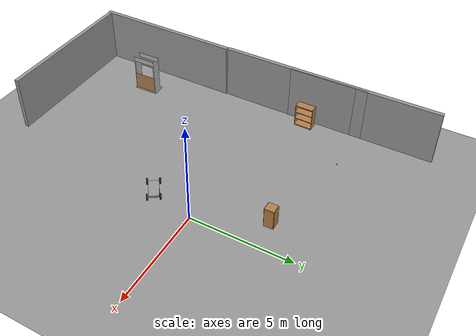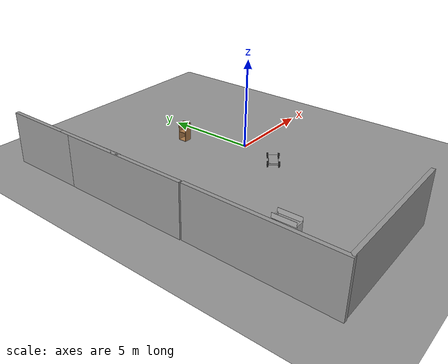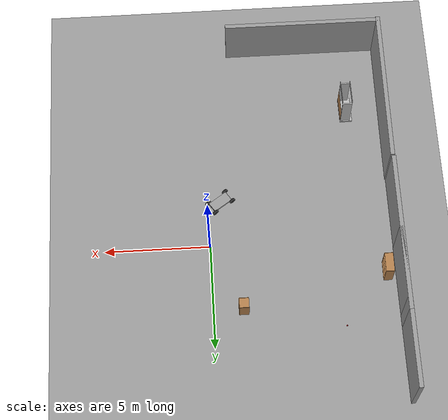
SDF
<sdf version="1.7">
 <world name="default">
  <model name="ground_plane_0">
   <static>1</static>
   <link name="link">
    <collision name="collision">
     <geometry><plane><normal>0 0 1</normal><size>100 100</size></plane></geometry>
     <surface><friction><ode><mu>100</mu><mu2>50</mu2></ode></friction></surface>
    </collision>
    <visual name="visual">
     <cast_shadows>0</cast_shadows>
     <geometry><plane><normal>0 0 1</normal><size>100 100</size></plane></geometry>
     <material>
      <script><uri>file://media/materials/scripts/gazebo.material</uri><name>Gazebo/Grey</name></script>
     </material>
    </visual>
    <velocity_decay><linear>0</linear><angular>0</angular></velocity_decay>
   </link>
   <pose>0.497681 0 0 0 -0 0</pose>
  </model>
  <model name="cart_rigid_suspension">
   <link name="chassis">
    <pose>0 0 0.15 0 -0 0</pose>
    <inertial>
     <pose>0.1 0 0 0 -0 0</pose>
     <mass>10</mass>
     <inertia>
      <ixx>0.216667</ixx>
      <iyy>0.841667</iyy>
      <izz>1.04167</izz>
      <ixy>0</ixy>
      <ixz>0</ixz>
      <iyz>0</iyz>
     </inertia>
    </inertial>
    <collision name="collision"><geometry><box><size>1 0.5 0.1</size></box></geometry></collision>
    <visual name="visual">
     <geometry><box><size>1 0.5 0.1</size></box></geometry>
     <material>
      <script><uri>file://media/materials/scripts/gazebo.material</uri><name>Gazebo/Grey</name></script>
     </material>
    </visual>
    <velocity_decay><linear>0</linear><angular>0</angular></velocity_decay>
   </link>
   <link name="wheel_front_left">
    <pose>0.5 0.298 0.15 -1.5708 0 0</pose>
    <inertial>
     <mass>0.5</mass>
     <inertia>
      <ixx>0.00307917</ixx>
      <iyy>0.00307917</iyy>
      <izz>0.005625</izz>
      <ixy>0</ixy>
      <ixz>0</ixz>
      <iyz>0</iyz>
     </inertia>
    </inertial>
    <collision name="collision">
     <geometry><cylinder><radius>0.15</radius><length>0.08</length></cylinder></geometry>
    </collision>
    <visual name="visual">
     <geometry><cylinder><radius>0.15</radius><length>0.08</length></cylinder></geometry>
     <material>
      <script><uri>file://media/materials/scripts/gazebo.material</uri><name>Gazebo/Black</name></script>
     </material>
    </visual>
    <velocity_decay><linear>0</linear><angular>0</angular></velocity_decay>
   </link>
   <joint name="wheel_front_left_spin" type="revolute">
    <parent>chassis</parent>
    <child>wheel_front_left</child>
    <axis>
     <xyz expressed_in="__model__">0 0 1</xyz>
     <limit><lower>-1e+16</lower><upper>1e+16</upper></limit>
     <dynamics><spring_reference>0</spring_reference><spring_stiffness>0</spring_stiffness></dynamics>
    </axis>
   </joint>
   <link name="wheel_front_right">
    <pose>0.5 -0.298 0.15 -1.5708 0 0</pose>
    <inertial>
     <mass>0.5</mass>
     <inertia>
      <ixx>0.00307917</ixx>
      <iyy>0.00307917</iyy>
      <izz>0.005625</izz>
      <ixy>0</ixy>
      <ixz>0</ixz>
      <iyz>0</iyz>
     </inertia>
    </inertial>
    <collision name="collision">
     <geometry><cylinder><radius>0.15</radius><length>0.08</length></cylinder></geometry>
    </collision>
    <visual name="visual">
     <geometry><cylinder><radius>0.15</radius><length>0.08</length></cylinder></geometry>
     <material>
      <script><uri>file://media/materials/scripts/gazebo.material</uri><name>Gazebo/Black</name></script>
     </material>
    </visual>
    <velocity_decay><linear>0</linear><angular>0</angular></velocity_decay>
   </link>
   <joint name="wheel_front_right_spin" type="revolute">
    <parent>chassis</parent>
    <child>wheel_front_right</child>
    <axis>
     <xyz expressed_in="__model__">0 0 1</xyz>
     <limit><lower>-1e+16</lower><upper>1e+16</upper></limit>
     <dynamics><spring_reference>0</spring_reference><spring_stiffness>0</spring_stiffness></dynamics>
    </axis>
   </joint>
   <link name="wheel_rear_left">
    <pose>-0.5 0.298 0.15 -1.5708 0 0</pose>
    <inertial>
     <mass>0.5</mass>
     <inertia>
      <ixx>0.00307917</ixx>
      <iyy>0.00307917</iyy>
      <izz>0.005625</izz>
      <ixy>0</ixy>
      <ixz>0</ixz>
      <iyz>0</iyz>
     </inertia>
    </inertial>
    <collision name="collision">
     <geometry><cylinder><radius>0.15</radius><length>0.08</length></cylinder></geometry>
    </collision>
    <visual name="visual">
     <geometry><cylinder><radius>0.15</radius><length>0.08</length></cylinder></geometry>
     <material>
      <script><uri>file://media/materials/scripts/gazebo.material</uri><name>Gazebo/Black</name></script>
     </material>
    </visual>
    <velocity_decay><linear>0</linear><angular>0</angular></velocity_decay>
   </link>
   <joint name="wheel_rear_left_spin" type="revolute">
    <parent>chassis</parent>
    <child>wheel_rear_left</child>
    <axis>
     <xyz expressed_in="__model__">0 0 1</xyz>
     <limit><lower>-1e+16</lower><upper>1e+16</upper></limit>
     <dynamics><spring_reference>0</spring_reference><spring_stiffness>0</spring_stiffness></dynamics>
    </axis>
   </joint>
   <link name="wheel_rear_right">
    <pose>-0.5 -0.298 0.15 -1.5708 0 0</pose>
    <inertial>
     <mass>0.5</mass>
     <inertia>
      <ixx>0.00307917</ixx>
      <iyy>0.00307917</iyy>
      <izz>0.005625</izz>
      <ixy>0</ixy>
      <ixz>0</ixz>
      <iyz>0</iyz>
     </inertia>
    </inertial>
    <collision name="collision">
     <geometry><cylinder><radius>0.15</radius><length>0.08</length></cylinder></geometry>
    </collision>
    <visual name="visual">
     <geometry><cylinder><radius>0.15</radius><length>0.08</length></cylinder></geometry>
     <material>
      <script><uri>file://media/materials/scripts/gazebo.material</uri><name>Gazebo/Black</name></script>
     </material>
    </visual>
    <velocity_decay><linear>0</linear><angular>0</angular></velocity_decay>
   </link>
   <joint name="wheel_rear_right_spin" type="revolute">
    <parent>chassis</parent>
    <child>wheel_rear_right</child>
    <axis>
     <xyz expressed_in="__model__">0 0 1</xyz>
     <limit><lower>-1e+16</lower><upper>1e+16</upper></limit>
     <dynamics><spring_reference>0</spring_reference><spring_stiffness>0</spring_stiffness></dynamics>
    </axis>
   </joint>
   <pose>-0.593452 -2.24485 2.6e-05 6.8e-05 2.2e-05 -2.54171</pose>
   <static>0</static>
  </model>
  <model name="frc2016_drawbridge">
   <link name="base">
    <inertial>
     <mass>10</mass>
     <pose>0 0 1 0 -0 0</pose>
     <inertia><ixx>3.64907</ixx><ixy>0</ixy><ixz>0</ixz><iyy>4.67075</iyy><iyz>0</iyz><izz>1.66649</izz></inertia>
    </inertial>
    <visual name="platform">
     <pose>0 0 0.0425 0 -0 0</pose>
     <geometry><box><size>1.27 0.5969 0.085</size></box></geometry>
    </visual>
    <collision name="platform">
     <pose>0 0 0.0425 0 -0 0</pose>
     <geometry><box><size>1.27 0.5969 0.085</size></box></geometry>
    </collision>
    <visual name="right_wall">
     <pose>0.55879 0.04444 0.889 0 -0 0</pose>
     <geometry><box><size>0.05715 0.45698 1.77165</size></box></geometry>
    </visual>
    <collision name="right_wall">
     <pose>0.55879 0.04444 0.889 0 -0 0</pose>
     <geometry><box><size>0.05715 0.45698 1.77165</size></box></geometry>
    </collision>
    <visual name="left_wall">
     <pose>-0.55879 0.04444 0.889 0 -0 0</pose>
     <geometry><box><size>0.05715 0.45698 1.77165</size></box></geometry>
    </visual>
    <collision name="left_wall">
     <pose>-0.55879 0.04444 0.889 0 -0 0</pose>
     <geometry><box><size>0.05715 0.45698 1.77165</size></box></geometry>
    </collision>
    <visual name="front_upper_wall">
     <pose>0 0.27611 1.84286 0 -0 0</pose>
     <geometry><box><size>1.1557 0.006347 0.254</size></box></geometry>
    </visual>
    <collision name="front_upper_wall">
     <pose>0 0.27611 1.84286 0 -0 0</pose>
     <geometry><box><size>1.1557 0.006347 0.254</size></box></geometry>
    </collision>
    <visual name="back_upper_wall">
     <pose>0 -0.18722 1.84286 0 -0 0</pose>
     <geometry><box><size>1.1557 0.006347 0.254</size></box></geometry>
    </visual>
    <collision name="back_upper_wall">
     <pose>0 -0.18722 1.84286 0 -0 0</pose>
     <geometry><box><size>1.1557 0.006347 0.254</size></box></geometry>
    </collision>
    <velocity_decay><linear>0</linear><angular>0</angular></velocity_decay>
   </link>
   <link name="bridge">
    <pose>0 0.28245 0.50577 0 -0 0</pose>
    <inertial>
     <mass>2</mass>
     <pose>0 -0.28245 -0.50577 0 -0 0</pose>
     <inertia>
      <ixx>0.139361</ixx>
      <ixy>0</ixy>
      <ixz>0</ixz>
      <iyy>0.357088</iyy>
      <iyz>0</iyz>
      <izz>0.217741</izz>
     </inertia>
    </inertial>
    <visual name="visual">
     <geometry><box><size>1.14298 0.006347 0.9144</size></box></geometry>
     <material><script><name>Gazebo/WoodFloor</name><uri>__default__</uri></script></material>
    </visual>
    <collision name="collision"><geometry><box><size>1.14298 0.006347 0.9144</size></box></geometry></collision>
    <velocity_decay><linear>0</linear><angular>0</angular></velocity_decay>
   </link>
   <joint name="bridge_joint" type="revolute">
    <pose>0 0 -0.4172 0 -0 0</pose>
    <parent>base</parent>
    <child>bridge</child>
    <axis>
     <xyz expressed_in="__model__">1 0 0</xyz>
     <limit><lower>-2</lower><upper>0</upper></limit>
     <dynamics><spring_reference>0</spring_reference><spring_stiffness>0</spring_stiffness></dynamics>
    </axis>
   </joint>
   <pose>-7.03164 -6.93119 -0.000301 0.000171 0.000393 -1.5554</pose>
   <static>0</static>
  </model>
  <model name="RoboCup SPL Ball_0">
   <static>0</static>
   <link name="ball">
    <inertial>
     <mass>0.0056</mass>
     <inertia>
      <ixx>2.37e-06</ixx>
      <iyy>2.37e-06</iyy>
      <izz>2.37e-06</izz>
      <ixy>0</ixy>
      <ixz>0</ixz>
      <iyz>0</iyz>
     </inertia>
    </inertial>
    <collision name="collision"><geometry><sphere><radius>0.0325</radius></sphere></geometry></collision>
    <visual name="visual">
     <geometry><sphere><radius>0.0325</radius></sphere></geometry>
     <material>
      <script><uri>file://media/materials/scripts/gazebo.material</uri><name>Gazebo/RedBright</name></script>
     </material>
    </visual>
    <velocity_decay><linear>0</linear><angular>0</angular></velocity_decay>
   </link>
   <pose>-6.12244 4.31862 0.226195 0.155685 -1.25458 1.90313</pose>
  </model>
  <model name="grey_wall_0">
   <static>1</static>
   <link name="link">
    <pose>0 0 1.4 0 -0 0</pose>
    <collision name="collision"><geometry><box><size>7.5 0.2 2.8</size></box></geometry></collision>
    <visual name="visual">
     <cast_shadows>0</cast_shadows>
     <geometry><box><size>7.5 0.2 2.8</size></box></geometry>
     <material>
      <script>
       <uri>model://grey_wall/materials/scripts</uri>
       <uri>model://grey_wall/materials/textures</uri>
       <name>vrc/grey_wall</name>
      </script>
     </material>
    </visual>
    <velocity_decay><linear>0</linear><angular>0</angular></velocity_decay>
   </link>
   <pose>-8.76574 0.752835 0 0 0 -1.57097</pose>
  </model>
  <model name="grey_wall_2">
   <static>1</static>
   <link name="link">
    <pose>0 0 1.4 0 -0 0</pose>
    <collision name="collision"><geometry><box><size>7.5 0.2 2.8</size></box></geometry></collision>
    <visual name="visual">
     <cast_shadows>0</cast_shadows>
     <geometry><box><size>7.5 0.2 2.8</size></box></geometry>
     <material>
      <script>
       <uri>model://grey_wall/materials/scripts</uri>
       <uri>model://grey_wall/materials/textures</uri>
       <name>vrc/grey_wall</name>
      </script>
     </material>
    </visual>
    <velocity_decay><linear>0</linear><angular>0</angular></velocity_decay>
   </link>
   <pose>-8.76656 4.31578 0 0 0 -1.56736</pose>
  </model>
  <model name="grey_wall_4">
   <static>1</static>
   <link name="link">
    <pose>0 0 1.4 0 -0 0</pose>
    <collision name="collision"><geometry><box><size>7.5 0.2 2.8</size></box></geometry></collision>
    <visual name="visual">
     <cast_shadows>0</cast_shadows>
     <geometry><box><size>7.5 0.2 2.8</size></box></geometry>
     <material>
      <script>
       <uri>model://grey_wall/materials/scripts</uri>
       <uri>model://grey_wall/materials/textures</uri>
       <name>vrc/grey_wall</name>
      </script>
     </material>
    </visual>
    <velocity_decay><linear>0</linear><angular>0</angular></velocity_decay>
   </link>
   <pose>-5.02716 -10.4179 0 0 -0 0</pose>
  </model>
  <model name="bookshelf_2">
   <static>1</static>
   <link name="link">
    <inertial><mass>1</mass></inertial>
    <collision name="back">
     <pose>0 0.005 0.6 0 -0 0</pose>
     <geometry><box><size>0.9 0.01 1.2</size></box></geometry>
    </collision>
    <visual name="visual1">
     <pose>0 0.005 0.6 0 -0 0</pose>
     <geometry><box><size>0.9 0.01 1.2</size></box></geometry>
     <material>
      <script><uri>file://media/materials/scripts/gazebo.material</uri><name>Gazebo/Wood</name></script>
     </material>
    </visual>
    <collision name="left_side">
     <pose>0.45 -0.195 0.6 0 -0 0</pose>
     <geometry><box><size>0.02 0.4 1.2</size></box></geometry>
    </collision>
    <visual name="visual2">
     <pose>0.45 -0.195 0.6 0 -0 0</pose>
     <geometry><box><size>0.02 0.4 1.2</size></box></geometry>
     <material>
      <script><uri>file://media/materials/scripts/gazebo.material</uri><name>Gazebo/Wood</name></script>
     </material>
    </visual>
    <collision name="right_side">
     <pose>-0.45 -0.195 0.6 0 -0 0</pose>
     <geometry><box><size>0.02 0.4 1.2</size></box></geometry>
    </collision>
    <visual name="visual3">
     <pose>-0.45 -0.195 0.6 0 -0 0</pose>
     <geometry><box><size>0.02 0.4 1.2</size></box></geometry>
     <material>
      <script><uri>file://media/materials/scripts/gazebo.material</uri><name>Gazebo/Wood</name></script>
     </material>
    </visual>
    <collision name="bottom">
     <pose>0 -0.195 0.03 0 -0 0</pose>
     <geometry><box><size>0.88 0.4 0.06</size></box></geometry>
    </collision>
    <visual name="visual4">
     <pose>0 -0.195 0.03 0 -0 0</pose>
     <geometry><box><size>0.88 0.4 0.06</size></box></geometry>
     <material>
      <script><uri>file://media/materials/scripts/gazebo.material</uri><name>Gazebo/Wood</name></script>
     </material>
    </visual>
    <collision name="top">
     <pose>0 -0.195 1.19 0 -0 0</pose>
     <geometry><box><size>0.88 0.4 0.02</size></box></geometry>
    </collision>
    <visual name="visual5">
     <pose>0 -0.195 1.19 0 -0 0</pose>
     <geometry><box><size>0.88 0.4 0.02</size></box></geometry>
     <material>
      <script><uri>file://media/materials/scripts/gazebo.material</uri><name>Gazebo/Wood</name></script>
     </material>
    </visual>
    <collision name="low_shelf">
     <pose>0 -0.195 0.43 0 -0 0</pose>
     <geometry><box><size>0.88 0.4 0.02</size></box></geometry>
    </collision>
    <visual name="visual6">
     <pose>0 -0.195 0.43 0 -0 0</pose>
     <geometry><box><size>0.88 0.4 0.02</size></box></geometry>
     <material>
      <script><uri>file://media/materials/scripts/gazebo.material</uri><name>Gazebo/Wood</name></script>
     </material>
    </visual>
    <collision name="high_shelf">
     <pose>0 -0.195 0.8 0 -0 0</pose>
     <geometry><box><size>0.88 0.4 0.02</size></box></geometry>
    </collision>
    <visual name="visual7">
     <pose>0 -0.195 0.8 0 -0 0</pose>
     <geometry><box><size>0.88 0.4 0.02</size></box></geometry>
     <material>
      <script><uri>file://media/materials/scripts/gazebo.material</uri><name>Gazebo/Wood</name></script>
     </material>
    </visual>
    <velocity_decay><linear>0</linear><angular>0</angular></velocity_decay>
   </link>
   <pose>-8.45581 1.67502 0 0 -0 1.55887</pose>
  </model>
  <model name="grey_wall_5">
   <static>1</static>
   <link name="link">
    <pose>0 0 1.4 0 -0 0</pose>
    <collision name="collision"><geometry><box><size>7.5 0.2 2.8</size></box></geometry></collision>
    <visual name="visual">
     <cast_shadows>0</cast_shadows>
     <geometry><box><size>7.5 0.2 2.8</size></box></geometry>
     <material>
      <script>
       <uri>model://grey_wall/materials/scripts</uri>
       <uri>model://grey_wall/materials/textures</uri>
       <name>vrc/grey_wall</name>
      </script>
     </material>
    </visual>
    <velocity_decay><linear>0</linear><angular>0</angular></velocity_decay>
   </link>
   <pose>-8.75399 -6.79811 0 0 -0 1.5641</pose>
  </model>
  <model name="cabinet_1">
   <static>1</static>
   <link name="cabinet_bottom_plate">
    <inertial>
     <pose>0 0 -1 0 -0 0</pose>
     <inertia><ixx>2.05</ixx><ixy>0</ixy><ixz>0</ixz><iyy>2.05</iyy><iyz>0</iyz><izz>2.05</izz></inertia>
     <mass>25</mass>
    </inertial>
    <collision name="cabinet_bottom_plate_geom">
     <pose>0 0 0.01 0 -0 0</pose>
     <geometry><box><size>0.45 0.45 0.02</size></box></geometry>
    </collision>
    <visual name="cabinet_bottom_plate_geom_visual">
     <pose>0 0 0.01 0 -0 0</pose>
     <geometry><box><size>0.45 0.45 0.02</size></box></geometry>
     <material>
      <script><uri>file://media/materials/scripts/gazebo.material</uri><name>Gazebo/Wood</name></script>
     </material>
    </visual>
    <collision name="cabinet_bottom_plate_geom_cabinet_back_plate">
     <pose>0.235 0 0.51 0 -0 0</pose>
     <geometry><box><size>0.02 0.45 1.02</size></box></geometry>
    </collision>
    <visual name="cabinet_bottom_plate_geom_cabinet_back_plate_visual">
     <pose>0.235 0 0.51 0 -0 0</pose>
     <geometry><box><size>0.02 0.45 1.02</size></box></geometry>
     <material>
      <script><uri>file://media/materials/scripts/gazebo.material</uri><name>Gazebo/Wood</name></script>
     </material>
    </visual>
    <collision name="cabinet_bottom_plate_geom_cabinet_left_plate">
     <pose>0 0.235 0.51 0 -0 0</pose>
     <geometry><box><size>0.45 0.02 1.02</size></box></geometry>
    </collision>
    <visual name="cabinet_bottom_plate_geom_cabinet_left_plate_visual">
     <pose>0 0.235 0.51 0 -0 0</pose>
     <geometry><box><size>0.45 0.02 1.02</size></box></geometry>
     <material>
      <script><uri>file://media/materials/scripts/gazebo.material</uri><name>Gazebo/Wood</name></script>
     </material>
    </visual>
    <collision name="cabinet_bottom_plate_geom_cabinet_middle_plate">
     <pose>0 0 0.51 0 -0 0</pose>
     <geometry><box><size>0.45 0.45 0.02</size></box></geometry>
    </collision>
    <visual name="cabinet_bottom_plate_geom_cabinet_middle_plate_visual">
     <pose>0 0 0.51 0 -0 0</pose>
     <geometry><box><size>0.45 0.45 0.02</size></box></geometry>
     <material>
      <script><uri>file://media/materials/scripts/gazebo.material</uri><name>Gazebo/Wood</name></script>
     </material>
    </visual>
    <collision name="cabinet_bottom_plate_geom_cabinet_right_plate">
     <pose>0 -0.235 0.51 0 -0 0</pose>
     <geometry><box><size>0.45 0.02 1.02</size></box></geometry>
    </collision>
    <visual name="cabinet_bottom_plate_geom_cabinet_right_plate_visual">
     <pose>0 -0.235 0.51 0 -0 0</pose>
     <geometry><box><size>0.45 0.02 1.02</size></box></geometry>
     <material>
      <script><uri>file://media/materials/scripts/gazebo.material</uri><name>Gazebo/Wood</name></script>
     </material>
    </visual>
    <collision name="cabinet_bottom_plate_geom_cabinet_top_plate">
     <pose>0 0 1.01 0 -0 0</pose>
     <geometry><box><size>0.45 0.45 0.02</size></box></geometry>
    </collision>
    <visual name="cabinet_bottom_plate_geom_cabinet_top_plate_visual">
     <pose>0 0 1.01 0 -0 0</pose>
     <geometry><box><size>0.45 0.45 0.02</size></box></geometry>
     <material>
      <script><uri>file://media/materials/scripts/gazebo.material</uri><name>Gazebo/Wood</name></script>
     </material>
    </visual>
    <velocity_decay><linear>0</linear><angular>0</angular></velocity_decay>
   </link>
   <pose>-1.43256 3.20435 0 0 -0 0</pose>
  </model>
 </world>
</sdf>
